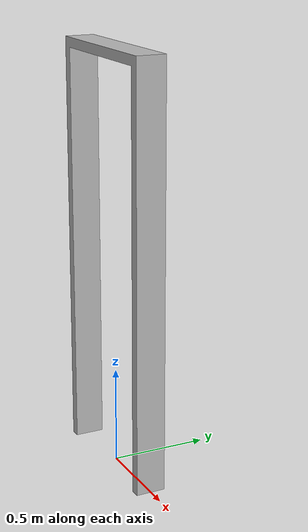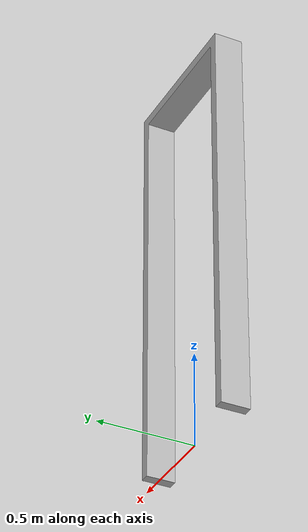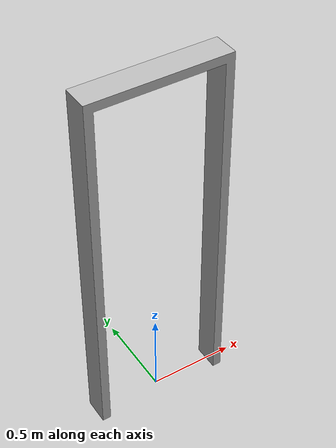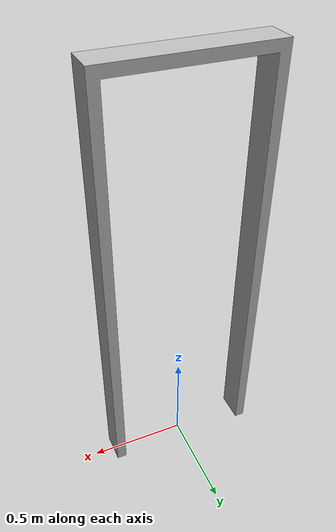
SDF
<?xml version="1.0"?>
<sdf version="1.4">
<model name="futra_70">
	<pose>0 0 0 0 0 0</pose>
	<static>true</static>
	<link name="futra_70_collision">
		<collision name="futra_70_collision">
		<geometry>
			<mesh>
				<uri>model://futra_70/meshes/model.dae</uri>

			</mesh>
		</geometry>
		</collision>
	<visual name="futra_70_mesh">
	<cast_shadows>false</cast_shadows>
		<geometry>
			<mesh>
				<uri> model://futra_70/meshes/model.dae</uri>

			</mesh>
		</geometry>
		<material>
		<script>
			<uri> model://futra_70/material/scripts</uri>
			<uri> model://futra_70/material/textures</uri>
			<name>futra_70/Diffuse</name>
		</script>
		</material>

	</visual>
</link>
</model>
</sdf>
